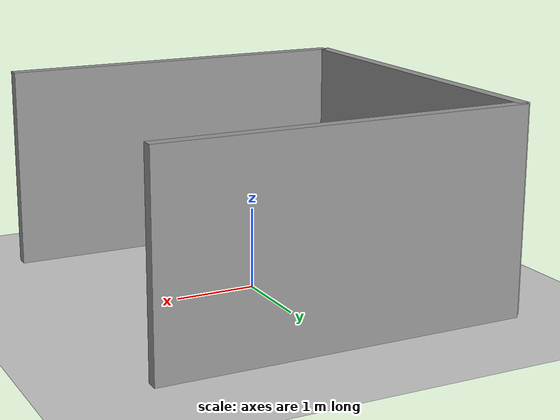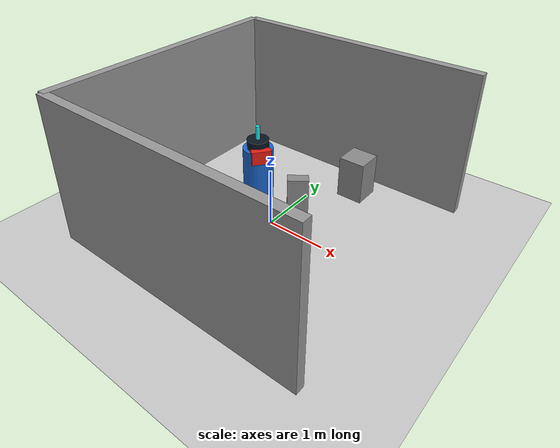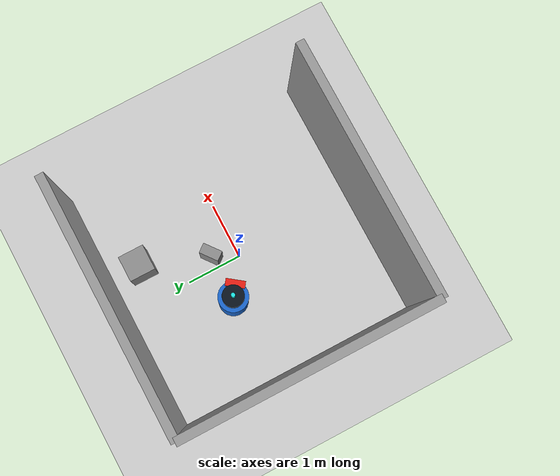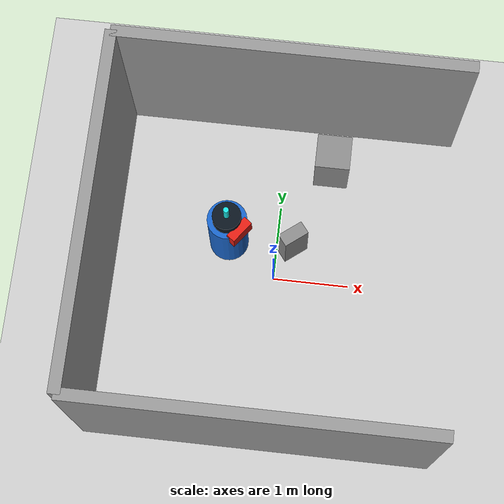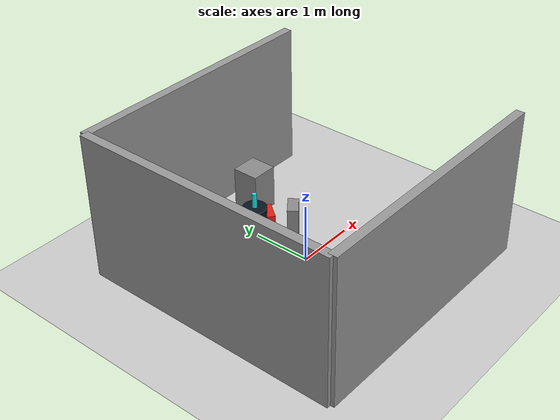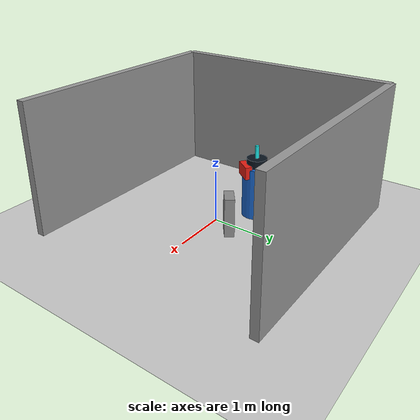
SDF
<sdf version="1.7">
 <world name="default">
  <plugin name="socnav_plugin" filename="libSocNavPlugin.so">
   <robot_name>robot</robot_name>
   <trajectory_file>/home/hunav_gz_classic_ws/SocNav3_trajectories/src6/000003903.json</trajectory_file>
   <human_slots>2</human_slots>
   <goal_angle_mesh>
    <angle_threshold>1.18637608992</angle_threshold>
    <uri>/home/hunav_gz_classic_ws/src/socnav_gazebo_reproducer/meshes/000003903_goal_angle_00.stl</uri>
   </goal_angle_mesh>
  </plugin>
  <light name="sun" type="directional">
   <pose>0 0 10 0 -0 0</pose>
   <diffuse>0.8 0.8 0.8 1</diffuse>
   <specular>0.2 0.2 0.2 1</specular>
   <attenuation>
    <range>1000</range>
    <constant>0.9</constant>
    <linear>0.01</linear>
    <quadratic>0.001</quadratic>
   </attenuation>
   <direction>-0.5 0.1 -0.9</direction>
   <spot><inner_angle>0</inner_angle><outer_angle>0</outer_angle><falloff>0</falloff></spot>
  </light>
  <model name="ground_plane">
   <static>1</static>
   <link name="link">
    <collision name="collision">
     <geometry><plane><normal>0 0 1</normal><size>100 100</size></plane></geometry>
     <surface><friction><ode><mu>100</mu><mu2>50</mu2></ode></friction></surface>
    </collision>
    <visual name="visual">
     <cast_shadows>0</cast_shadows>
     <geometry><plane><normal>0 0 1</normal><size>100 100</size></plane></geometry>
     <material>
      <script><uri>file://media/materials/scripts/kitchen.material</uri><name>Kitchen/CounterTop_H</name></script>
     </material>
    </visual>
   </link>
  </model>
  <gravity>0 0 -9.8</gravity>
  <magnetic_field>6e-06 2.3e-05 -4.2e-05</magnetic_field>
  <atmosphere type="adiabatic"/>
  <physics type="ode">
   <max_step_size>0.001</max_step_size>
   <real_time_factor>1</real_time_factor>
   <real_time_update_rate>1000</real_time_update_rate>
  </physics>
  <scene><ambient>0.4 0.4 0.4 1</ambient><background>0.7 0.7 0.7 1</background><shadows>1</shadows></scene>
  <audio><device>default</device></audio>
  <spherical_coordinates>
   <surface_model>EARTH_WGS84</surface_model>
   <latitude_deg>0</latitude_deg>
   <longitude_deg>0</longitude_deg>
   <elevation>0</elevation>
   <heading_deg>0</heading_deg>
  </spherical_coordinates>
  <model name="robot">
   <pose>-0.6545344254808463 0.4609951501365971 0.5 0 0 -0.6409538856488631</pose>
   <link name="link">
    <collision name="collision">
     <geometry><cylinder><radius>0.26083691694934</radius><length>1.0</length></cylinder></geometry>
    </collision>
    <visual name="visual">
     <geometry><cylinder><radius>0.26083691694934</radius><length>1.0</length></cylinder></geometry>
     <material><ambient>0.1 0.4 0.8 1</ambient><diffuse>0.1 0.4 0.8 1</diffuse></material>
    </visual>
    <visual name="robot_top">
     <pose>0 0 0.58 0 0 0</pose>
     <geometry><cylinder><radius>0.1878025802035248</radius><length>0.16</length></cylinder></geometry>
     <material><ambient>0.04 0.08 0.12 1</ambient><diffuse>0.04 0.08 0.12 1</diffuse></material>
    </visual>
    <visual name="robot_front">
     <pose>0.2191030102374456 0 0.44 0 0 0</pose>
     <geometry><box><size>0.1252017201356832 0.33387125369515525 0.24</size></box></geometry>
     <material><ambient>0.9 0.12 0.08 1</ambient><diffuse>0.9 0.12 0.08 1</diffuse></material>
    </visual>
    <visual name="robot_sensor">
     <pose>0 0 0.78 0 0 0</pose>
     <geometry><cylinder><radius>0.03651716837290761</radius><length>0.24</length></cylinder></geometry>
     <material><ambient>0.1 0.9 0.9 1</ambient><diffuse>0.1 0.9 0.9 1</diffuse></material>
    </visual>
   </link>
  </model>
  <model name="static_object_0">
   <static>true</static>
   <pose>0.21145500688121782 0.43791142280331175 0.375 0 0 0.6585969121928126</pose>
   <link name="link">
    <collision name="collision"><geometry><box><size>0.35 0.18 0.75</size></box></geometry></collision>
    <visual name="visual">
     <geometry><box><size>0.35 0.18 0.75</size></box></geometry>
     <material><ambient>0.55 0.55 0.55 1</ambient><diffuse>0.55 0.55 0.55 1</diffuse></material>
    </visual>
   </link>
  </model>
  <model name="static_object_2">
   <static>true</static>
   <pose>0.6269341386279375 1.6276702249208093 0.375 0 0 0</pose>
   <link name="link">
    <collision name="collision">
     <geometry><box><size>0.46122562294885716 0.46122562294885716 0.75</size></box></geometry>
    </collision>
    <visual name="visual">
     <geometry><box><size>0.46122562294885716 0.46122562294885716 0.75</size></box></geometry>
     <material><ambient>0.55 0.55 0.55 1</ambient><diffuse>0.55 0.55 0.55 1</diffuse></material>
    </visual>
   </link>
  </model>
  <model name="simple_world_test">
   <link name="Wall_0">
    <collision name="Wall_0_Collision">
     <geometry><box><size>4.496587723051451 0.15 2.5</size></box></geometry>
     <pose>0 0 1.25 0 -0 0</pose>
    </collision>
    <visual name="Wall_0_Visual">
     <pose>0 0 1.25 0 -0 0</pose>
     <geometry><box><size>4.496587723051451 0.15 2.5</size></box></geometry>
     <material>
      <script><uri>file://media/materials/scripts/gazebo.material</uri><name>Gazebo/Grey</name></script>
      <ambient>1 1 1 1</ambient>
     </material>
     <meta><layer>0</layer></meta>
    </visual>
    <pose>0.0 -2.2382938615257255 0 0 -0 -3.141592653589793</pose>
   </link>
   <link name="Wall_1">
    <collision name="Wall_1_Collision">
     <geometry><box><size>4.496587723051451 0.15 2.5</size></box></geometry>
     <pose>0 0 1.25 0 -0 0</pose>
    </collision>
    <visual name="Wall_1_Visual">
     <pose>0 0 1.25 0 -0 0</pose>
     <geometry><box><size>4.496587723051451 0.15 2.5</size></box></geometry>
     <material>
      <script><uri>file://media/materials/scripts/gazebo.material</uri><name>Gazebo/Grey</name></script>
      <ambient>1 1 1 1</ambient>
     </material>
     <meta><layer>0</layer></meta>
    </visual>
    <pose>-2.2382938615257255 0.0 0 0 -0 1.5707963267948966</pose>
   </link>
   <link name="Wall_2">
    <collision name="Wall_2_Collision">
     <geometry><box><size>4.496587723051451 0.15 2.5</size></box></geometry>
     <pose>0 0 1.25 0 -0 0</pose>
    </collision>
    <visual name="Wall_2_Visual">
     <pose>0 0 1.25 0 -0 0</pose>
     <geometry><box><size>4.496587723051451 0.15 2.5</size></box></geometry>
     <material>
      <script><uri>file://media/materials/scripts/gazebo.material</uri><name>Gazebo/Grey</name></script>
      <ambient>1 1 1 1</ambient>
     </material>
     <meta><layer>0</layer></meta>
    </visual>
    <pose>0.0 2.2382938615257255 0 0 -0 0.0</pose>
   </link>
   <static>1</static>
  </model>
 </world>
</sdf>
